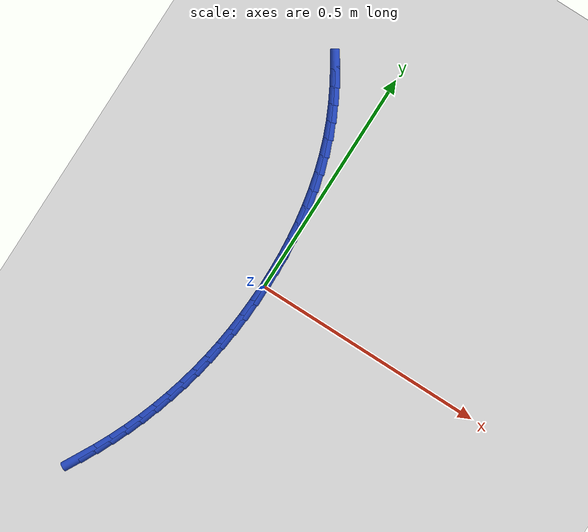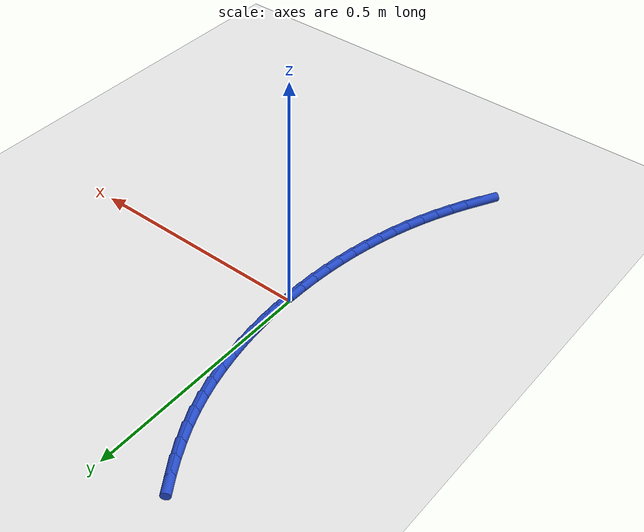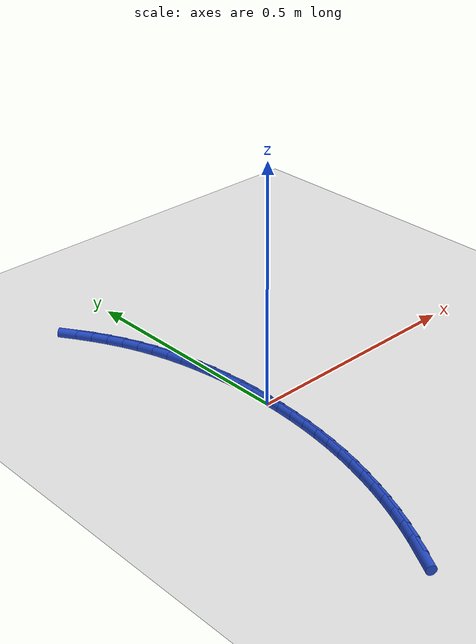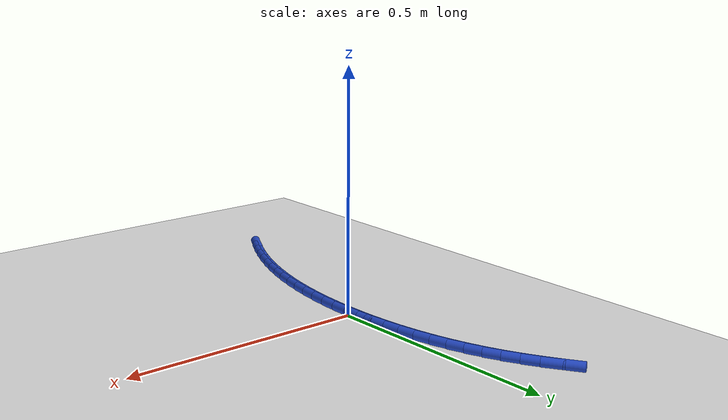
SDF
<sdf version="1.6">
 <world name="default">
  <model name="ground_plane">
   <static>1</static>
   <link name="link">
    <collision name="collision">
     <geometry><plane><normal>0 0 1</normal><size>100 100</size></plane></geometry>
     <surface><friction><ode><mu>100</mu><mu2>50</mu2></ode></friction></surface>
    </collision>
    <visual name="visual">
     <cast_shadows>0</cast_shadows>
     <geometry><plane><normal>0 0 1</normal><size>100 100</size></plane></geometry>
     <material>
      <script><uri>file://media/materials/scripts/gazebo.material</uri><name>Gazebo/WhiteGlow</name></script>
     </material>
    </visual>
   </link>
  </model>
  <model name="line">
   <link name="link_0">
    <pose>1.734723475976807e-17 -4.163336342344337e-17 0.01 0 1.57 -1.5626037937595845</pose>
    <collision name="collision">
     <geometry><cylinder><radius>0.01</radius><length>0.08</length></cylinder></geometry>
    </collision>
    <visual name="visual">
     <material>
      <script><name>Gazebo/Blue</name><uri>file://media/materials/scripts/gazebo.material</uri></script>
     </material>
     <geometry><cylinder><radius>0.01</radius><length>0.08</length></cylinder></geometry>
    </visual>
   </link>
   <link name="link_1">
    <pose>-0.00030351160201223847 0.0370465166695689 0.01 0 1.57 -1.5278229069202303</pose>
    <collision name="collision">
     <geometry><cylinder><radius>0.01</radius><length>0.08</length></cylinder></geometry>
    </collision>
    <visual name="visual">
     <material>
      <script><name>Gazebo/Blue</name><uri>file://media/materials/scripts/gazebo.material</uri></script>
     </material>
     <geometry><cylinder><radius>0.01</radius><length>0.08</length></cylinder></geometry>
    </visual>
   </link>
   <link name="link_2">
    <pose>-0.0018972537591898655 0.07411038029971191 0.01 0 1.57 -1.4916405770578898</pose>
    <collision name="collision">
     <geometry><cylinder><radius>0.01</radius><length>0.08</length></cylinder></geometry>
    </collision>
    <visual name="visual">
     <material>
      <script><name>Gazebo/Blue</name><uri>file://media/materials/scripts/gazebo.material</uri></script>
     </material>
     <geometry><cylinder><radius>0.01</radius><length>0.08</length></cylinder></geometry>
    </visual>
   </link>
   <link name="link_3">
    <pose>-0.004829344227241 0.11107502427851049 0.01 0 1.57 -1.453817450458762</pose>
    <collision name="collision">
     <geometry><cylinder><radius>0.01</radius><length>0.08</length></cylinder></geometry>
    </collision>
    <visual name="visual">
     <material>
      <script><name>Gazebo/Blue</name><uri>file://media/materials/scripts/gazebo.material</uri></script>
     </material>
     <geometry><cylinder><radius>0.01</radius><length>0.08</length></cylinder></geometry>
    </visual>
   </link>
   <link name="link_4">
    <pose>-0.009147900761873792 0.14782388199404617 0.01 0 1.57 -1.4141096295233095</pose>
    <collision name="collision">
     <geometry><cylinder><radius>0.01</radius><length>0.08</length></cylinder></geometry>
    </collision>
    <visual name="visual">
     <material>
      <script><name>Gazebo/Blue</name><uri>file://media/materials/scripts/gazebo.material</uri></script>
     </material>
     <geometry><cylinder><radius>0.01</radius><length>0.08</length></cylinder></geometry>
    </visual>
   </link>
   <link name="link_5">
    <pose>-0.014901041118796388 0.18424038683440042 0.01 0 1.57 -1.3722695328198553</pose>
    <collision name="collision">
     <geometry><cylinder><radius>0.01</radius><length>0.08</length></cylinder></geometry>
    </collision>
    <visual name="visual">
     <material>
      <script><name>Gazebo/Blue</name><uri>file://media/materials/scripts/gazebo.material</uri></script>
     </material>
     <geometry><cylinder><radius>0.01</radius><length>0.08</length></cylinder></geometry>
    </visual>
   </link>
   <link name="link_6">
    <pose>-0.022136883053716916 0.22020797218765464 0.01 0 1.57 -1.328048443340571</pose>
    <collision name="collision">
     <geometry><cylinder><radius>0.01</radius><length>0.08</length></cylinder></geometry>
    </collision>
    <visual name="visual">
     <material>
      <script><name>Gazebo/Blue</name><uri>file://media/materials/scripts/gazebo.material</uri></script>
     </material>
     <geometry><cylinder><radius>0.01</radius><length>0.08</length></cylinder></geometry>
    </visual>
   </link>
   <link name="link_7">
    <pose>-0.030903544322343542 0.2556100714418905 0.01 0 1.57 -1.2812012083323614</pose>
    <collision name="collision">
     <geometry><cylinder><radius>0.01</radius><length>0.08</length></cylinder></geometry>
    </collision>
    <visual name="visual">
     <material>
      <script><name>Gazebo/Blue</name><uri>file://media/materials/scripts/gazebo.material</uri></script>
     </material>
     <geometry><cylinder><radius>0.01</radius><length>0.08</length></cylinder></geometry>
    </visual>
   </link>
   <link name="link_8">
    <pose>-0.04124914268038439 0.2903301179851893 0.01 0 1.57 -1.2314936257883793</pose>
    <collision name="collision">
     <geometry><cylinder><radius>0.01</radius><length>0.08</length></cylinder></geometry>
    </collision>
    <visual name="visual">
     <material>
      <script><name>Gazebo/Blue</name><uri>file://media/materials/scripts/gazebo.material</uri></script>
     </material>
     <geometry><cylinder><radius>0.01</radius><length>0.08</length></cylinder></geometry>
    </visual>
   </link>
   <link name="link_9">
    <pose>-0.05322179588354762 0.32425154520563276 0.01 0 1.57 -1.1788411844434894</pose>
    <collision name="collision">
     <geometry><cylinder><radius>0.01</radius><length>0.08</length></cylinder></geometry>
    </collision>
    <visual name="visual">
     <material>
      <script><name>Gazebo/Blue</name><uri>file://media/materials/scripts/gazebo.material</uri></script>
     </material>
     <geometry><cylinder><radius>0.01</radius><length>0.08</length></cylinder></geometry>
    </visual>
   </link>
   <link name="link_10">
    <pose>-0.06686634700018532 0.357261843730861 0.01 0 1.57 -1.126687224744267</pose>
    <collision name="collision">
     <geometry><cylinder><radius>0.01</radius><length>0.08</length></cylinder></geometry>
    </collision>
    <visual name="visual">
     <material>
      <script><name>Gazebo/Blue</name><uri>file://media/materials/scripts/gazebo.material</uri></script>
     </material>
     <geometry><cylinder><radius>0.01</radius><length>0.08</length></cylinder></geometry>
    </visual>
   </link>
   <link name="link_11">
    <pose>-0.08213848242725362 0.38935896663417424 0.01 0 1.57 -1.0792741672828092</pose>
    <collision name="collision">
     <geometry><cylinder><radius>0.01</radius><length>0.08</length></cylinder></geometry>
    </collision>
    <visual name="visual">
     <material>
      <script><name>Gazebo/Blue</name><uri>file://media/materials/scripts/gazebo.material</uri></script>
     </material>
     <geometry><cylinder><radius>0.01</radius><length>0.08</length></cylinder></geometry>
    </visual>
   </link>
   <link name="link_12">
    <pose>-0.09889629017767523 0.42066178846366514 0.01 0 1.57 -1.0372101447644175</pose>
    <collision name="collision">
     <geometry><cylinder><radius>0.01</radius><length>0.08</length></cylinder></geometry>
    </collision>
    <visual name="visual">
     <material>
      <script><name>Gazebo/Blue</name><uri>file://media/materials/scripts/gazebo.material</uri></script>
     </material>
     <geometry><cylinder><radius>0.01</radius><length>0.08</length></cylinder></geometry>
    </visual>
   </link>
   <link name="link_13">
    <pose>-0.11699289090180302 0.45129533818088036 0.01 0 1.57 -1.0007441487350055</pose>
    <collision name="collision">
     <geometry><cylinder><radius>0.01</radius><length>0.08</length></cylinder></geometry>
    </collision>
    <visual name="visual">
     <material>
      <script><name>Gazebo/Blue</name><uri>file://media/materials/scripts/gazebo.material</uri></script>
     </material>
     <geometry><cylinder><radius>0.01</radius><length>0.08</length></cylinder></geometry>
    </visual>
   </link>
   <link name="link_166">
    <pose>-0.12822253305578082 -0.48998043774837446 0.01 0 1.57 1.0766045988751516</pose>
    <collision name="collision">
     <geometry><cylinder><radius>0.01</radius><length>0.08</length></cylinder></geometry>
    </collision>
    <visual name="visual">
     <material>
      <script><name>Gazebo/Blue</name><uri>file://media/materials/scripts/gazebo.material</uri></script>
     </material>
     <geometry><cylinder><radius>0.01</radius><length>0.08</length></cylinder></geometry>
    </visual>
   </link>
   <link name="link_167">
    <pose>-0.1108804332843182 -0.4577929884138542 0.01 0 1.57 1.1133601461409415</pose>
    <collision name="collision">
     <geometry><cylinder><radius>0.01</radius><length>0.08</length></cylinder></geometry>
    </collision>
    <visual name="visual">
     <material>
      <script><name>Gazebo/Blue</name><uri>file://media/materials/scripts/gazebo.material</uri></script>
     </material>
     <geometry><cylinder><radius>0.01</radius><length>0.08</length></cylinder></geometry>
    </visual>
   </link>
   <link name="link_168">
    <pose>-0.094750453642349 -0.4250257699340259 0.01 0 1.57 1.150271397916312</pose>
    <collision name="collision">
     <geometry><cylinder><radius>0.01</radius><length>0.08</length></cylinder></geometry>
    </collision>
    <visual name="visual">
     <material>
      <script><name>Gazebo/Blue</name><uri>file://media/materials/scripts/gazebo.material</uri></script>
     </material>
     <geometry><cylinder><radius>0.01</radius><length>0.08</length></cylinder></geometry>
    </visual>
   </link>
   <link name="link_169">
    <pose>-0.07985540156003282 -0.39171858027849665 0.01 0 1.57 1.1873769350513188</pose>
    <collision name="collision">
     <geometry><cylinder><radius>0.01</radius><length>0.08</length></cylinder></geometry>
    </collision>
    <visual name="visual">
     <material>
      <script><name>Gazebo/Blue</name><uri>file://media/materials/scripts/gazebo.material</uri></script>
     </material>
     <geometry><cylinder><radius>0.01</radius><length>0.08</length></cylinder></geometry>
    </visual>
   </link>
   <link name="link_170">
    <pose>-0.06621808446752901 -0.3579112174168725 0.01 0 1.57 1.2246975120401324</pose>
    <collision name="collision">
     <geometry><cylinder><radius>0.01</radius><length>0.08</length></cylinder></geometry>
    </collision>
    <visual name="visual">
     <material>
      <script><name>Gazebo/Blue</name><uri>file://media/materials/scripts/gazebo.material</uri></script>
     </material>
     <geometry><cylinder><radius>0.01</radius><length>0.08</length></cylinder></geometry>
    </visual>
   </link>
   <link name="link_171">
    <pose>-0.053860597769094604 -0.3236432882420567 0.01 0 1.57 1.2619327978976085</pose>
    <collision name="collision">
     <geometry><cylinder><radius>0.01</radius><length>0.08</length></cylinder></geometry>
    </collision>
    <visual name="visual">
     <material>
      <script><name>Gazebo/Blue</name><uri>file://media/materials/scripts/gazebo.material</uri></script>
     </material>
     <geometry><cylinder><radius>0.01</radius><length>0.08</length></cylinder></geometry>
    </visual>
   </link>
   <link name="link_172">
    <pose>-0.04279104703503273 -0.28895064538552895 0.01 0 1.57 1.298778827086171</pose>
    <collision name="collision">
     <geometry><cylinder><radius>0.01</radius><length>0.08</length></cylinder></geometry>
    </collision>
    <visual name="visual">
     <material>
      <script><name>Gazebo/Blue</name><uri>file://media/materials/scripts/gazebo.material</uri></script>
     </material>
     <geometry><cylinder><radius>0.01</radius><length>0.08</length></cylinder></geometry>
    </visual>
   </link>
   <link name="link_173">
    <pose>-0.03300475804383993 -0.25386571193989776 0.01 0 1.57 1.335214308899468</pose>
    <collision name="collision">
     <geometry><cylinder><radius>0.01</radius><length>0.08</length></cylinder></geometry>
    </collision>
    <visual name="visual">
     <material>
      <script><name>Gazebo/Blue</name><uri>file://media/materials/scripts/gazebo.material</uri></script>
     </material>
     <geometry><cylinder><radius>0.01</radius><length>0.08</length></cylinder></geometry>
    </visual>
   </link>
   <link name="link_174">
    <pose>-0.024496587177589717 -0.21842078503223972 0.01 0 1.57 1.3712333215966344</pose>
    <collision name="collision">
     <geometry><cylinder><radius>0.01</radius><length>0.08</length></cylinder></geometry>
    </collision>
    <visual name="visual">
     <material>
      <script><name>Gazebo/Blue</name><uri>file://media/materials/scripts/gazebo.material</uri></script>
     </material>
     <geometry><cylinder><radius>0.01</radius><length>0.08</length></cylinder></geometry>
    </visual>
   </link>
   <link name="link_175">
    <pose>-0.017261390818355628 -0.18264816178963109 0.01 0 1.57 1.4068340638262131</pose>
    <collision name="collision">
     <geometry><cylinder><radius>0.01</radius><length>0.08</length></cylinder></geometry>
    </collision>
    <visual name="visual">
     <material>
      <script><name>Gazebo/Blue</name><uri>file://media/materials/scripts/gazebo.material</uri></script>
     </material>
     <geometry><cylinder><radius>0.01</radius><length>0.08</length></cylinder></geometry>
    </visual>
   </link>
   <link name="link_176">
    <pose>-0.011294025348211063 -0.14658013933914749 0.01 0 1.57 1.4420185244216328</pose>
    <collision name="collision">
     <geometry><cylinder><radius>0.01</radius><length>0.08</length></cylinder></geometry>
    </collision>
    <visual name="visual">
     <material>
      <script><name>Gazebo/Blue</name><uri>file://media/materials/scripts/gazebo.material</uri></script>
     </material>
     <geometry><cylinder><radius>0.01</radius><length>0.08</length></cylinder></geometry>
    </visual>
   </link>
   <link name="link_177">
    <pose>-0.006589347149229778 -0.11024901480786667 0.01 0 1.57 1.4767921333318044</pose>
    <collision name="collision">
     <geometry><cylinder><radius>0.01</radius><length>0.08</length></cylinder></geometry>
    </collision>
    <visual name="visual">
     <material>
      <script><name>Gazebo/Blue</name><uri>file://media/materials/scripts/gazebo.material</uri></script>
     </material>
     <geometry><cylinder><radius>0.01</radius><length>0.08</length></cylinder></geometry>
    </visual>
   </link>
   <link name="link_178">
    <pose>-0.003142212603485154 -0.07368708532286426 0.01 0 1.57 1.5111634034885013</pose>
    <collision name="collision">
     <geometry><cylinder><radius>0.01</radius><length>0.08</length></cylinder></geometry>
    </collision>
    <visual name="visual">
     <material>
      <script><name>Gazebo/Blue</name><uri>file://media/materials/scripts/gazebo.material</uri></script>
     </material>
     <geometry><cylinder><radius>0.01</radius><length>0.08</length></cylinder></geometry>
    </visual>
   </link>
   <link name="link_179">
    <pose>-0.0009474780930507172 -0.0369266480112166 0.01 0 1.57 1.5451435719075333</pose>
    <collision name="collision">
     <geometry><cylinder><radius>0.01</radius><length>0.08</length></cylinder></geometry>
    </collision>
    <visual name="visual">
     <material>
      <script><name>Gazebo/Blue</name><uri>file://media/materials/scripts/gazebo.material</uri></script>
     </material>
     <geometry><cylinder><radius>0.01</radius><length>0.08</length></cylinder></geometry>
    </visual>
   </link>
   <link name="link_180">
    <pose>2.0816681711721685e-17 -3.469446951953614e-17 0.01 0 1.57 -1.562846406807227</pose>
    <collision name="collision">
     <geometry><cylinder><radius>0.01</radius><length>0.08</length></cylinder></geometry>
    </collision>
    <visual name="visual">
     <material>
      <script><name>Gazebo/Blue</name><uri>file://media/materials/scripts/gazebo.material</uri></script>
     </material>
     <geometry><cylinder><radius>0.01</radius><length>0.08</length></cylinder></geometry>
    </visual>
   </link>
   <link name="link_181">
    <pose>-0.0002946347064064613 0.03706056158370914 0.01 0 1.57 -1.562846406807227</pose>
    <collision name="collision">
     <geometry><cylinder><radius>0.01</radius><length>0.08</length></cylinder></geometry>
    </collision>
    <visual name="visual">
     <material>
      <script><name>Gazebo/Blue</name><uri>file://media/materials/scripts/gazebo.material</uri></script>
     </material>
     <geometry><cylinder><radius>0.01</radius><length>0.08</length></cylinder></geometry>
    </visual>
   </link>
  </model>
 </world>
</sdf>
